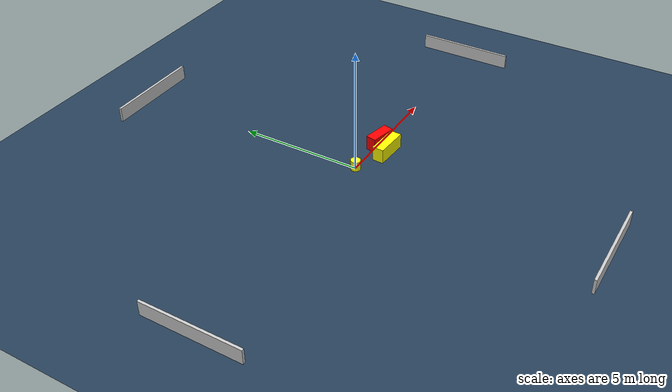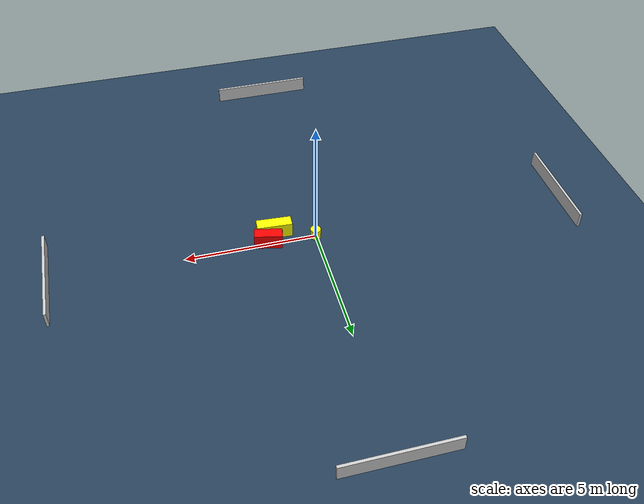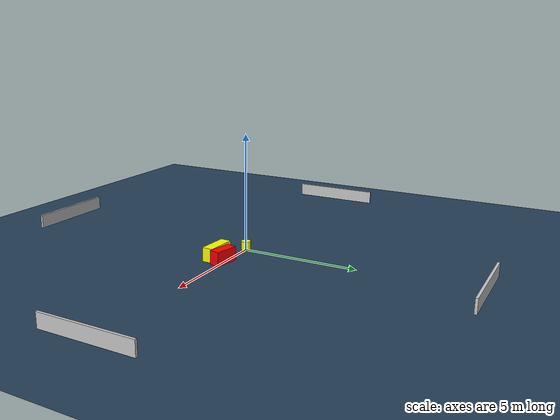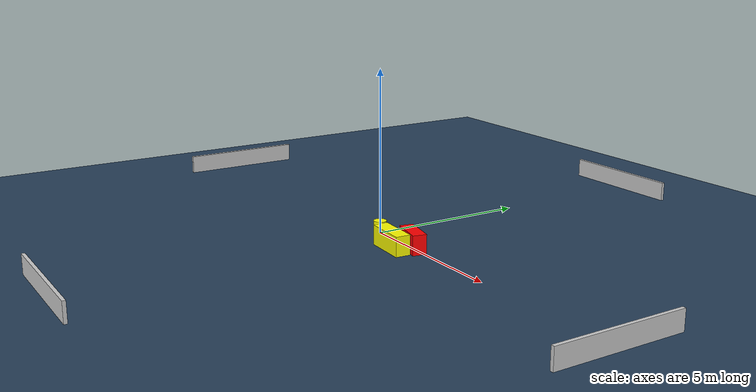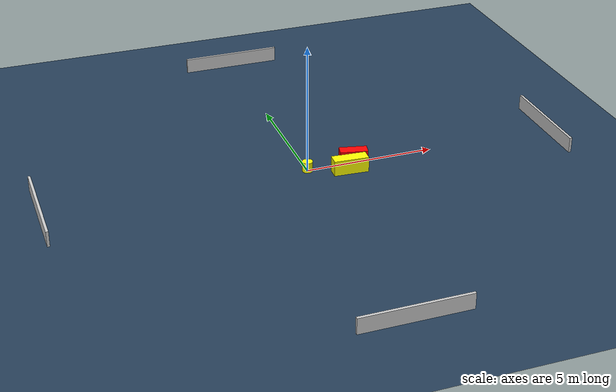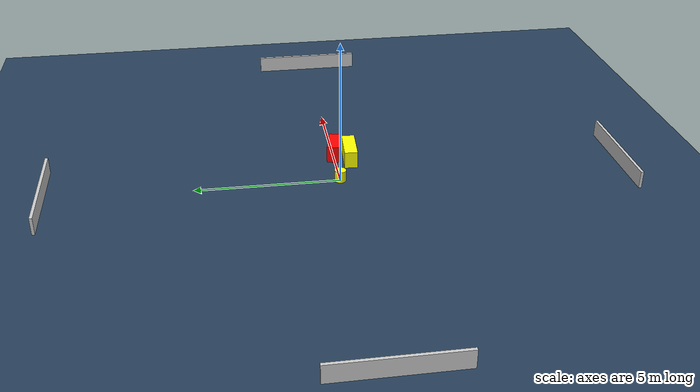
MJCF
<?xml version="1.0" ?>
<mujoco model="generated_environment">
  <option timestep="0.01" integrator="RK4" cone="elliptic"/>
  <default>
    <geom density="1"/>
  </default>
  <asset>
    <texture builtin="gradient" height="3072" name="skybox" rgb1="0.3 0.5 0.7" rgb2="0 0 0" type="skybox" width="512"/>
    <texture builtin="checker" height="300" name="groundplane" rgb1="0.2 0.3 0.4" rgb2="0.1 0.2 0.3" type="2d" width="300"/>
    <material name="groundplane" reflectance="0.2" texrepeat="5 5" texture="groundplane"/>
  </asset>
  <worldbody>
    <light dir="0 0 -1" directional="true" pos="0 0 1.5"/>
    <geom condim="3" friction="0.5 0.005 0.001" material="groundplane" name="floor" pos="0 0 0" size="0 0 0.05" type="plane"/>
    <body name="walls">
      <geom name="wall_1" condim="4" pos="-10.0 0.0 0.3" rgba="0.800000011920929 0.800000011920929 0.800000011920929 1.0" size="0.05 2.0 0.3" type="box"/>
      <geom name="wall_2" condim="4" pos="10.0 0.0 0.3" rgba="0.800000011920929 0.800000011920929 0.800000011920929 1.0" size="0.05 2.0 0.3" type="box"/>
      <geom name="wall_3" condim="4" pos="0.0 -10.0 0.3" rgba="0.800000011920929 0.800000011920929 0.800000011920929 1.0" size="2.0 0.05 0.3" type="box"/>
      <geom name="wall_4" condim="4" pos="0.0 10.0 0.3" rgba="0.800000011920929 0.800000011920929 0.800000011920929 1.0" size="2.0 0.05 0.3" type="box"/>
    </body>
    <body name="robot">
      <joint name="joint_x" type="slide" pos="0 0 0" axis="1 0 0"/>
      <joint name="joint_y" type="slide" pos="0 0 0" axis="0 1 0"/>
      <geom name="robot" type="cylinder" pos="0.0 0.0 0.2" size="0.2 0.2 0.0" mass="5.0" friction="1.0 0.005 0.0001" condim="4" rgba="1.0 1.0 0.0 1.0"/>
    </body>
    <body name="obstacle_1_movable">
      <geom name="obstacle_1_movable" condim="4" pos="1.4900085179700437 -0.5462559707345961 0.3" euler="0 0 86.58023157547984" friction="0.0 0.005 0.001" rgba="1.0 1.0 0.0 1.0" size="0.23135404239948476 0.669621680696119 0.3" type="box" mass="0.1"/>
      <joint type="free"/>
    </body>
    <body name="obstacle_2_static">
      <geom name="obstacle_2_static" condim="4" pos="1.8262685793780455 -0.03468739931948073 0.3" euler="0 0 77.64979763332106" friction="0.0 0.005 0.001" rgba="1.0 0.0 0.0 1.0" size="0.21316143953973485 0.5303711287464037 0.3" type="box"/>
    </body>
  </worldbody>
  <actuator>
    <motor name="actuator_x" joint="joint_x" gear="1" ctrlrange="-1 1"/>
    <motor name="actuator_y" joint="joint_y" gear="1" ctrlrange="-1 1"/>
  </actuator>
</mujoco>
